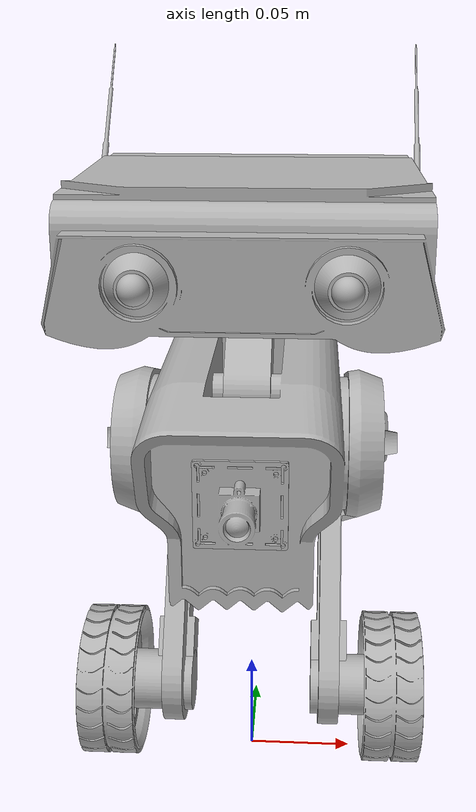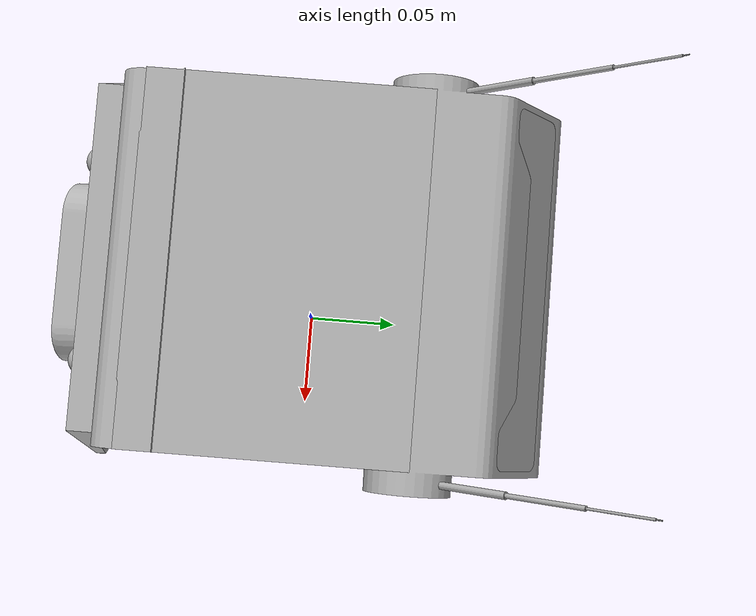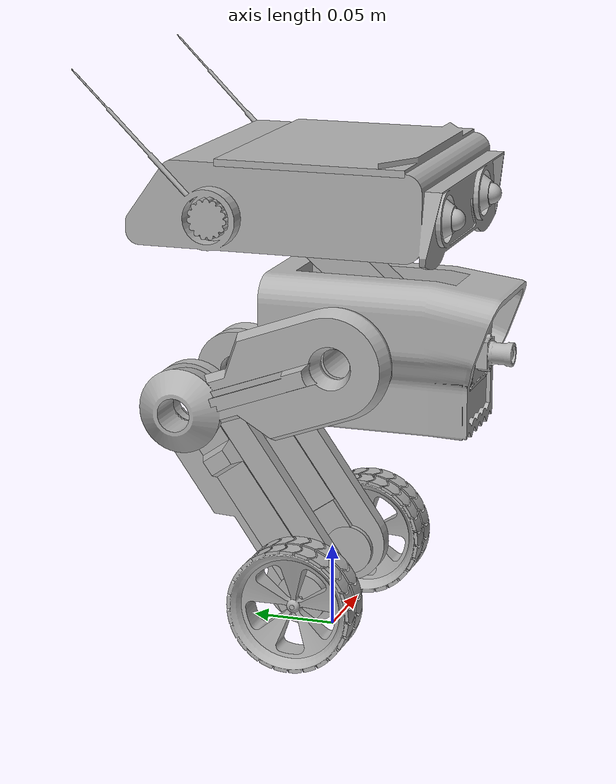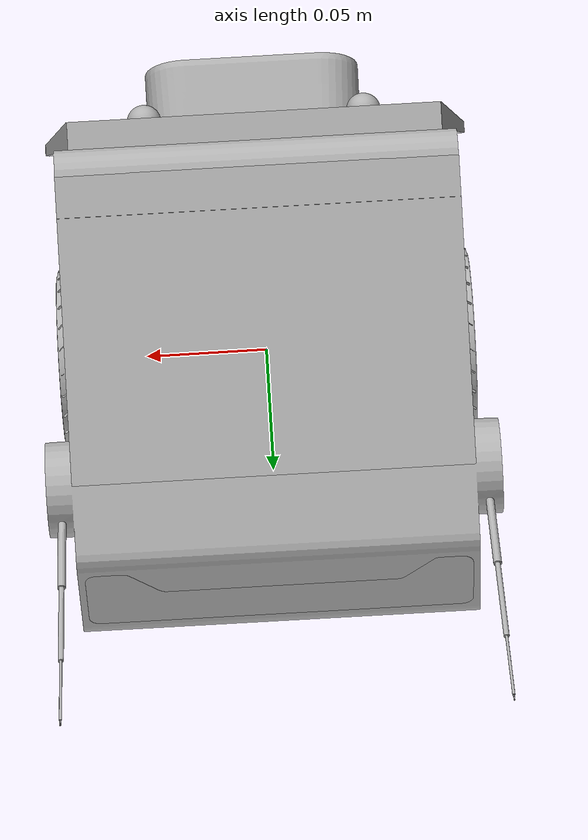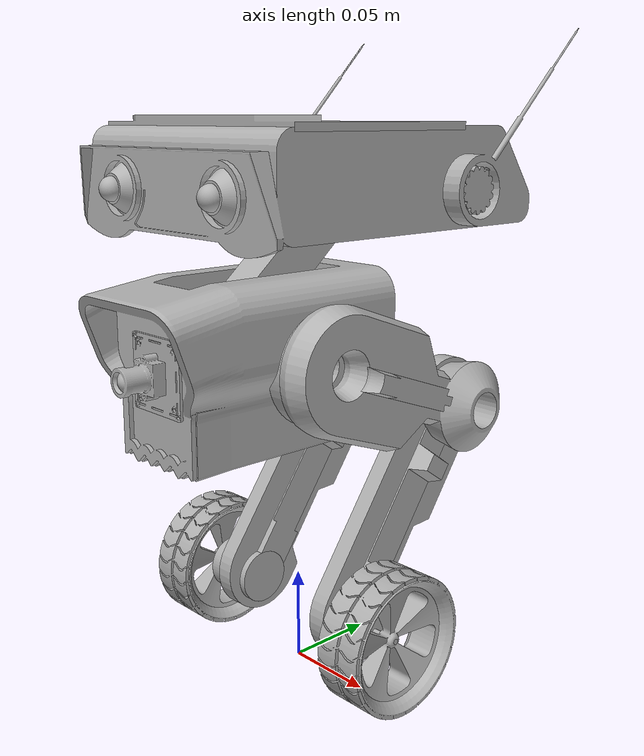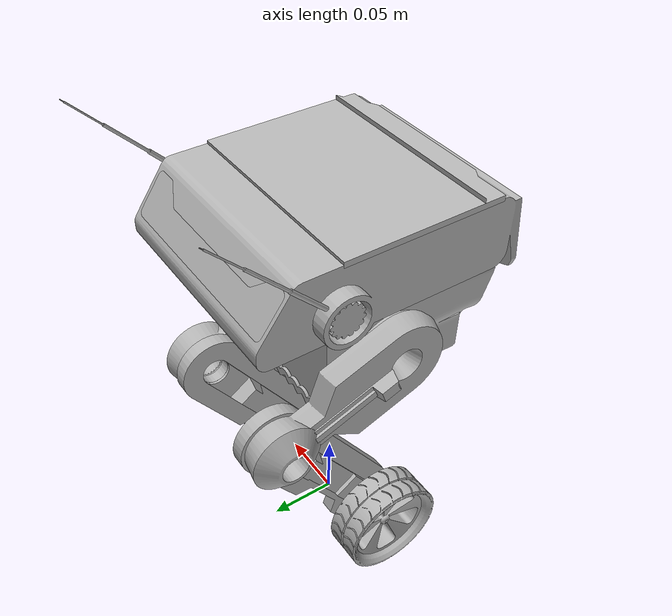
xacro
<?xml version="1.0" ?>
<robot name="bd1_bot" xmlns:xacro="http://www.ros.org/wiki/xacro">

<xacro:include filename="$(find bd1_bot_description)/urdf/materials.xacro" />
<xacro:include filename="$(find bd1_bot_description)/urdf/bd1_bot.trans" />
<xacro:include filename="$(find bd1_bot_description)/urdf/bd1_bot.gazebo" />
<link name="base_link">
  <inertial>
    <origin xyz="-3.180834059638465e-05 -0.028937573687409172 0.17717056516547702" rpy="0 0 0"/>
    <mass value="0.6871683490298791"/>
    <inertia ixx="0.001278" iyy="0.000754" izz="0.001226" ixy="0.0" iyz="9e-06" ixz="-0.0"/>
  </inertial>
  <visual>
    <origin xyz="0 0 0" rpy="0 0 0"/>
    <geometry>
      <mesh filename="file://$(find bd1_bot_description)/meshes/base_link.stl" scale="0.001 0.001 0.001"/>
    </geometry>
    <material name="silver"/>
  </visual>
  <collision>
    <origin xyz="0 0 0" rpy="0 0 0"/>
    <geometry>
      <mesh filename="file://$(find bd1_bot_description)/meshes/base_link.stl" scale="0.001 0.001 0.001"/>
    </geometry>
  </collision>
</link>

<link name="left_top_leg_1">
  <inertial>
    <origin xyz="0.008170600100975256 0.0394894379137513 -0.014373284377612094" rpy="0 0 0"/>
    <mass value="0.11806434962739475"/>
    <inertia ixx="0.000239" iyy="5.5e-05" izz="0.00019" ixy="-6e-06" iyz="5.6e-05" ixz="2e-06"/>
  </inertial>
  <visual>
    <origin xyz="-0.04375 0.017055 -0.176837" rpy="0 0 0"/>
    <geometry>
      <mesh filename="file://$(find bd1_bot_description)/meshes/left_top_leg_1.stl" scale="0.001 0.001 0.001"/>
    </geometry>
    <material name="silver"/>
  </visual>
  <collision>
    <origin xyz="-0.04375 0.017055 -0.176837" rpy="0 0 0"/>
    <geometry>
      <mesh filename="file://$(find bd1_bot_description)/meshes/left_top_leg_1.stl" scale="0.001 0.001 0.001"/>
    </geometry>
  </collision>
</link>

<link name="right_top_leg_1">
  <inertial>
    <origin xyz="-0.008146638140998898 0.03956747308259668 -0.01440168685598367" rpy="0 0 0"/>
    <mass value="0.11765454158339926"/>
    <inertia ixx="0.000238" iyy="5.5e-05" izz="0.000189" ixy="6e-06" iyz="5.6e-05" ixz="-2e-06"/>
  </inertial>
  <visual>
    <origin xyz="0.04375 0.017055 -0.176837" rpy="0 0 0"/>
    <geometry>
      <mesh filename="file://$(find bd1_bot_description)/meshes/right_top_leg_1.stl" scale="0.001 0.001 0.001"/>
    </geometry>
    <material name="silver"/>
  </visual>
  <collision>
    <origin xyz="0.04375 0.017055 -0.176837" rpy="0 0 0"/>
    <geometry>
      <mesh filename="file://$(find bd1_bot_description)/meshes/right_top_leg_1.stl" scale="0.001 0.001 0.001"/>
    </geometry>
  </collision>
</link>

<link name="left_top_leg_part_1">
  <inertial>
    <origin xyz="0.0030166828594480125 0.022791614835476554 -0.008295935118418557" rpy="0 0 0"/>
    <mass value="0.00355238590700276"/>
    <inertia ixx="1e-06" iyy="0.0" izz="1e-06" ixy="0.0" iyz="0.0" ixz="-0.0"/>
  </inertial>
  <visual>
    <origin xyz="-0.05775 0.005408 -0.172598" rpy="0 0 0"/>
    <geometry>
      <mesh filename="file://$(find bd1_bot_description)/meshes/left_top_leg_part_1.stl" scale="0.001 0.001 0.001"/>
    </geometry>
    <material name="silver"/>
  </visual>
  <collision>
    <origin xyz="-0.05775 0.005408 -0.172598" rpy="0 0 0"/>
    <geometry>
      <mesh filename="file://$(find bd1_bot_description)/meshes/left_top_leg_part_1.stl" scale="0.001 0.001 0.001"/>
    </geometry>
  </collision>
</link>

<link name="right_top_leg_part_1">
  <inertial>
    <origin xyz="-0.0030166828594481512 0.022791614835476138 -0.008295935118418613" rpy="0 0 0"/>
    <mass value="0.00355238590700276"/>
    <inertia ixx="1e-06" iyy="0.0" izz="1e-06" ixy="-0.0" iyz="0.0" ixz="0.0"/>
  </inertial>
  <visual>
    <origin xyz="0.05775 0.005408 -0.172598" rpy="0 0 0"/>
    <geometry>
      <mesh filename="file://$(find bd1_bot_description)/meshes/right_top_leg_part_1.stl" scale="0.001 0.001 0.001"/>
    </geometry>
    <material name="silver"/>
  </visual>
  <collision>
    <origin xyz="0.05775 0.005408 -0.172598" rpy="0 0 0"/>
    <geometry>
      <mesh filename="file://$(find bd1_bot_description)/meshes/right_top_leg_part_1.stl" scale="0.001 0.001 0.001"/>
    </geometry>
  </collision>
</link>

<link name="left_bottom_leg_1">
  <inertial>
    <origin xyz="-0.005000000000000122 -0.03342992083960998 -0.04524895101460043" rpy="0 0 0"/>
    <mass value="0.06694057104242657"/>
    <inertia ixx="0.000154" iyy="9.6e-05" izz="5.9e-05" ixy="0.0" iyz="-6e-05" ixz="0.0"/>
  </inertial>
  <visual>
    <origin xyz="-0.04375 -0.074565 -0.14349" rpy="0 0 0"/>
    <geometry>
      <mesh filename="file://$(find bd1_bot_description)/meshes/left_bottom_leg_1.stl" scale="0.001 0.001 0.001"/>
    </geometry>
    <material name="silver"/>
  </visual>
  <collision>
    <origin xyz="-0.04375 -0.074565 -0.14349" rpy="0 0 0"/>
    <geometry>
      <mesh filename="file://$(find bd1_bot_description)/meshes/left_bottom_leg_1.stl" scale="0.001 0.001 0.001"/>
    </geometry>
  </collision>
</link>

<link name="left_bottom_leg_part1_1">
  <inertial>
    <origin xyz="0.0028887297099540535 0.030804854644567246 0.043994677208628444" rpy="0 0 0"/>
    <mass value="0.007986683815434131"/>
    <inertia ixx="8e-06" iyy="6e-06" izz="3e-06" ixy="-0.0" iyz="-4e-06" ixz="-0.0"/>
  </inertial>
  <visual>
    <origin xyz="-0.04275 -0.008604 -0.049287" rpy="0 0 0"/>
    <geometry>
      <mesh filename="file://$(find bd1_bot_description)/meshes/left_bottom_leg_part1_1.stl" scale="0.001 0.001 0.001"/>
    </geometry>
    <material name="silver"/>
  </visual>
  <collision>
    <origin xyz="-0.04275 -0.008604 -0.049287" rpy="0 0 0"/>
    <geometry>
      <mesh filename="file://$(find bd1_bot_description)/meshes/left_bottom_leg_part1_1.stl" scale="0.001 0.001 0.001"/>
    </geometry>
  </collision>
</link>

<link name="left_bottom_leg_part2_1">
  <inertial>
    <origin xyz="-0.0028887297099543657 0.03080485464456717 0.043994677208628416" rpy="0 0 0"/>
    <mass value="0.007986683815434131"/>
    <inertia ixx="8e-06" iyy="6e-06" izz="3e-06" ixy="0.0" iyz="-4e-06" ixz="0.0"/>
  </inertial>
  <visual>
    <origin xyz="-0.03475 -0.008604 -0.049287" rpy="0 0 0"/>
    <geometry>
      <mesh filename="file://$(find bd1_bot_description)/meshes/left_bottom_leg_part2_1.stl" scale="0.001 0.001 0.001"/>
    </geometry>
    <material name="silver"/>
  </visual>
  <collision>
    <origin xyz="-0.03475 -0.008604 -0.049287" rpy="0 0 0"/>
    <geometry>
      <mesh filename="file://$(find bd1_bot_description)/meshes/left_bottom_leg_part2_1.stl" scale="0.001 0.001 0.001"/>
    </geometry>
  </collision>
</link>

<link name="right_bottom_leg_1">
  <inertial>
    <origin xyz="0.004999999999999803 -0.03342992083961032 -0.045248951014600344" rpy="0 0 0"/>
    <mass value="0.06694057104242657"/>
    <inertia ixx="0.000154" iyy="9.6e-05" izz="5.9e-05" ixy="0.0" iyz="-6e-05" ixz="0.0"/>
  </inertial>
  <visual>
    <origin xyz="0.04375 -0.074565 -0.14349" rpy="0 0 0"/>
    <geometry>
      <mesh filename="file://$(find bd1_bot_description)/meshes/right_bottom_leg_1.stl" scale="0.001 0.001 0.001"/>
    </geometry>
    <material name="silver"/>
  </visual>
  <collision>
    <origin xyz="0.04375 -0.074565 -0.14349" rpy="0 0 0"/>
    <geometry>
      <mesh filename="file://$(find bd1_bot_description)/meshes/right_bottom_leg_1.stl" scale="0.001 0.001 0.001"/>
    </geometry>
  </collision>
</link>

<link name="right_bottom_leg_part1_1">
  <inertial>
    <origin xyz="-0.0028887297099544212 0.03080485464456685 0.0439946772086285" rpy="0 0 0"/>
    <mass value="0.007986683815434131"/>
    <inertia ixx="8e-06" iyy="6e-06" izz="3e-06" ixy="0.0" iyz="-4e-06" ixz="0.0"/>
  </inertial>
  <visual>
    <origin xyz="0.04275 -0.008604 -0.049287" rpy="0 0 0"/>
    <geometry>
      <mesh filename="file://$(find bd1_bot_description)/meshes/right_bottom_leg_part1_1.stl" scale="0.001 0.001 0.001"/>
    </geometry>
    <material name="silver"/>
  </visual>
  <collision>
    <origin xyz="0.04275 -0.008604 -0.049287" rpy="0 0 0"/>
    <geometry>
      <mesh filename="file://$(find bd1_bot_description)/meshes/right_bottom_leg_part1_1.stl" scale="0.001 0.001 0.001"/>
    </geometry>
  </collision>
</link>

<link name="right_bottom_leg_part2_1">
  <inertial>
    <origin xyz="0.002888729709954102 0.03080485464456688 0.04399467720862853" rpy="0 0 0"/>
    <mass value="0.007986683815434131"/>
    <inertia ixx="8e-06" iyy="6e-06" izz="3e-06" ixy="-0.0" iyz="-4e-06" ixz="-0.0"/>
  </inertial>
  <visual>
    <origin xyz="0.03475 -0.008604 -0.049287" rpy="0 0 0"/>
    <geometry>
      <mesh filename="file://$(find bd1_bot_description)/meshes/right_bottom_leg_part2_1.stl" scale="0.001 0.001 0.001"/>
    </geometry>
    <material name="silver"/>
  </visual>
  <collision>
    <origin xyz="0.03475 -0.008604 -0.049287" rpy="0 0 0"/>
    <geometry>
      <mesh filename="file://$(find bd1_bot_description)/meshes/right_bottom_leg_part2_1.stl" scale="0.001 0.001 0.001"/>
    </geometry>
  </collision>
</link>

<link name="left_motor_1">
  <inertial>
    <origin xyz="0.015111940298507473 7.507795174563197e-16 -4.996003610813204e-16" rpy="0 0 0"/>
    <mass value="0.022590485913617148"/>
    <inertia ixx="3e-06" iyy="3e-06" izz="3e-06" ixy="-0.0" iyz="0.0" ixz="0.0"/>
  </inertial>
  <visual>
    <origin xyz="-0.02975 -0.0 -0.037" rpy="0 0 0"/>
    <geometry>
      <mesh filename="file://$(find bd1_bot_description)/meshes/left_motor_1.stl" scale="0.001 0.001 0.001"/>
    </geometry>
    <material name="silver"/>
  </visual>
  <collision>
    <origin xyz="-0.02975 -0.0 -0.037" rpy="0 0 0"/>
    <geometry>
      <mesh filename="file://$(find bd1_bot_description)/meshes/left_motor_1.stl" scale="0.001 0.001 0.001"/>
    </geometry>
  </collision>
</link>

<link name="left_wheel_1">
  <inertial>
    <origin xyz="-0.004999999723916709 5.330407374826963e-09 6.948940922679725e-09" rpy="0 0 0"/>
    <mass value="0.02988168724907574"/>
    <inertia ixx="2.1e-05" iyy="1.1e-05" izz="1.1e-05" ixy="0.0" iyz="-0.0" ixz="0.0"/>
  </inertial>
  <visual>
    <origin xyz="-0.07475 -0.0 -0.037" rpy="0 0 0"/>
    <geometry>
      <mesh filename="file://$(find bd1_bot_description)/meshes/left_wheel_1.stl" scale="0.001 0.001 0.001"/>
    </geometry>
    <material name="silver"/>
  </visual>
  <collision>
    <origin xyz="-0.07475 -0.0 -0.037" rpy="0 0 0"/>
    <geometry>
      <mesh filename="file://$(find bd1_bot_description)/meshes/left_wheel_1.stl" scale="0.001 0.001 0.001"/>
    </geometry>
  </collision>
</link>

<link name="left_tyre_1">
  <inertial>
    <origin xyz="-1.858665114175262e-05 3.4965965086175387e-10 5.557722476678961e-10" rpy="0 0 0"/>
    <mass value="0.027473313011808588"/>
    <inertia ixx="3.3e-05" iyy="1.8e-05" izz="1.8e-05" ixy="0.0" iyz="-0.0" ixz="0.0"/>
  </inertial>
  <visual>
    <origin xyz="-0.06975 -0.0 -0.037" rpy="0 0 0"/>
    <geometry>
      <mesh filename="file://$(find bd1_bot_description)/meshes/left_tyre_1.stl" scale="0.001 0.001 0.001"/>
    </geometry>
    <material name="silver"/>
  </visual>
  <collision>
    <origin xyz="-0.06975 -0.0 -0.037" rpy="0 0 0"/>
    <geometry>
      <mesh filename="file://$(find bd1_bot_description)/meshes/left_tyre_1.stl" scale="0.001 0.001 0.001"/>
    </geometry>
  </collision>
</link>

<link name="right_motor_1">
  <inertial>
    <origin xyz="-0.015111940298507438 -9.605255930854404e-16 5.065392549852277e-16" rpy="0 0 0"/>
    <mass value="0.022590485913617148"/>
    <inertia ixx="3e-06" iyy="3e-06" izz="3e-06" ixy="-0.0" iyz="0.0" ixz="0.0"/>
  </inertial>
  <visual>
    <origin xyz="0.02975 0.0 -0.037" rpy="0 0 0"/>
    <geometry>
      <mesh filename="file://$(find bd1_bot_description)/meshes/right_motor_1.stl" scale="0.001 0.001 0.001"/>
    </geometry>
    <material name="silver"/>
  </visual>
  <collision>
    <origin xyz="0.02975 0.0 -0.037" rpy="0 0 0"/>
    <geometry>
      <mesh filename="file://$(find bd1_bot_description)/meshes/right_motor_1.stl" scale="0.001 0.001 0.001"/>
    </geometry>
  </collision>
</link>

<link name="right_wheel_1">
  <inertial>
    <origin xyz="0.00500000042509488 5.330406753102071e-09 6.94894101982424e-09" rpy="0 0 0"/>
    <mass value="0.02988168724907574"/>
    <inertia ixx="2.1e-05" iyy="1.1e-05" izz="1.1e-05" ixy="0.0" iyz="-0.0" ixz="0.0"/>
  </inertial>
  <visual>
    <origin xyz="0.07475 0.0 -0.037" rpy="0 0 0"/>
    <geometry>
      <mesh filename="file://$(find bd1_bot_description)/meshes/right_wheel_1.stl" scale="0.001 0.001 0.001"/>
    </geometry>
    <material name="silver"/>
  </visual>
  <collision>
    <origin xyz="0.07475 0.0 -0.037" rpy="0 0 0"/>
    <geometry>
      <mesh filename="file://$(find bd1_bot_description)/meshes/right_wheel_1.stl" scale="0.001 0.001 0.001"/>
    </geometry>
  </collision>
</link>

<link name="right_tyre_1">
  <inertial>
    <origin xyz="-1.8586502130130134e-05 3.4965902913685986e-10 5.557724072624559e-10" rpy="0 0 0"/>
    <mass value="0.027473313011808588"/>
    <inertia ixx="3.3e-05" iyy="1.8e-05" izz="1.8e-05" ixy="0.0" iyz="-0.0" ixz="0.0"/>
  </inertial>
  <visual>
    <origin xyz="0.06975 0.0 -0.037" rpy="0 0 0"/>
    <geometry>
      <mesh filename="file://$(find bd1_bot_description)/meshes/right_tyre_1.stl" scale="0.001 0.001 0.001"/>
    </geometry>
    <material name="silver"/>
  </visual>
  <collision>
    <origin xyz="0.06975 0.0 -0.037" rpy="0 0 0"/>
    <geometry>
      <mesh filename="file://$(find bd1_bot_description)/meshes/right_tyre_1.stl" scale="0.001 0.001 0.001"/>
    </geometry>
  </collision>
</link>

<link name="head_connector_1">
  <inertial>
    <origin xyz="-6.6613381477509405e-18 0.030188877571634746 0.026242577707178166" rpy="0 0 0"/>
    <mass value="0.045313827186204206"/>
    <inertia ixx="3.5e-05" iyy="1.7e-05" izz="2.1e-05" ixy="0.0" iyz="-1.5e-05" ixz="0.0"/>
  </inertial>
  <visual>
    <origin xyz="-0.0 0.031767 -0.206501" rpy="0 0 0"/>
    <geometry>
      <mesh filename="file://$(find bd1_bot_description)/meshes/head_connector_1.stl" scale="0.001 0.001 0.001"/>
    </geometry>
    <material name="silver"/>
  </visual>
  <collision>
    <origin xyz="-0.0 0.031767 -0.206501" rpy="0 0 0"/>
    <geometry>
      <mesh filename="file://$(find bd1_bot_description)/meshes/head_connector_1.stl" scale="0.001 0.001 0.001"/>
    </geometry>
  </collision>
</link>

<link name="head_1">
  <inertial>
    <origin xyz="-1.7784182525826254e-06 -0.021451548337959786 0.00893485011990891" rpy="0 0 0"/>
    <mass value="1.199572908129388"/>
    <inertia ixx="0.00315" iyy="0.002464" izz="0.005149" ixy="0.0" iyz="4.1e-05" ixz="0.0"/>
  </inertial>
  <visual>
    <origin xyz="0.0 -0.02861 -0.258986" rpy="0 0 0"/>
    <geometry>
      <mesh filename="file://$(find bd1_bot_description)/meshes/head_1.stl" scale="0.001 0.001 0.001"/>
    </geometry>
    <material name="silver"/>
  </visual>
  <collision>
    <origin xyz="0.0 -0.02861 -0.258986" rpy="0 0 0"/>
    <geometry>
      <mesh filename="file://$(find bd1_bot_description)/meshes/head_1.stl" scale="0.001 0.001 0.001"/>
    </geometry>
  </collision>
</link>

<link name="left_ear_1">
  <inertial>
    <origin xyz="0.00399999999999992 2.6078045980287845e-07 -6.113328676615737e-08" rpy="0 0 0"/>
    <mass value="0.0032936425348182733"/>
    <inertia ixx="0.0" iyy="0.0" izz="0.0" ixy="0.0" iyz="-0.0" ixz="0.0"/>
  </inertial>
  <visual>
    <origin xyz="-0.0725 -0.04811 -0.262986" rpy="0 0 0"/>
    <geometry>
      <mesh filename="file://$(find bd1_bot_description)/meshes/left_ear_1.stl" scale="0.001 0.001 0.001"/>
    </geometry>
    <material name="silver"/>
  </visual>
  <collision>
    <origin xyz="-0.0725 -0.04811 -0.262986" rpy="0 0 0"/>
    <geometry>
      <mesh filename="file://$(find bd1_bot_description)/meshes/left_ear_1.stl" scale="0.001 0.001 0.001"/>
    </geometry>
  </collision>
</link>

<link name="left_antenna_1">
  <inertial>
    <origin xyz="0.0005496913872387876 0.022283735539851225 0.02228341362611147" rpy="0 0 0"/>
    <mass value="0.0004022122169528586"/>
    <inertia ixx="0.0" iyy="0.0" izz="0.0" ixy="-0.0" iyz="-0.0" ixz="-0.0"/>
  </inertial>
  <visual>
    <origin xyz="-0.077459 -0.057818 -0.272694" rpy="0 0 0"/>
    <geometry>
      <mesh filename="file://$(find bd1_bot_description)/meshes/left_antenna_1.stl" scale="0.001 0.001 0.001"/>
    </geometry>
    <material name="silver"/>
  </visual>
  <collision>
    <origin xyz="-0.077459 -0.057818 -0.272694" rpy="0 0 0"/>
    <geometry>
      <mesh filename="file://$(find bd1_bot_description)/meshes/left_antenna_1.stl" scale="0.001 0.001 0.001"/>
    </geometry>
  </collision>
</link>

<link name="right_ear_1">
  <inertial>
    <origin xyz="-0.0040000000000001285 2.607804592061336e-07 -6.113328671064622e-08" rpy="0 0 0"/>
    <mass value="0.0032936425348182733"/>
    <inertia ixx="0.0" iyy="0.0" izz="0.0" ixy="0.0" iyz="0.0" ixz="0.0"/>
  </inertial>
  <visual>
    <origin xyz="0.0725 -0.04811 -0.262986" rpy="0 0 0"/>
    <geometry>
      <mesh filename="file://$(find bd1_bot_description)/meshes/right_ear_1.stl" scale="0.001 0.001 0.001"/>
    </geometry>
    <material name="silver"/>
  </visual>
  <collision>
    <origin xyz="0.0725 -0.04811 -0.262986" rpy="0 0 0"/>
    <geometry>
      <mesh filename="file://$(find bd1_bot_description)/meshes/right_ear_1.stl" scale="0.001 0.001 0.001"/>
    </geometry>
  </collision>
</link>

<link name="right_antenna_1">
  <inertial>
    <origin xyz="-0.0005503513654630948 0.02228315344381148 0.02228383153044894" rpy="0 0 0"/>
    <mass value="0.0004022122169528586"/>
    <inertia ixx="0.0" iyy="0.0" izz="0.0" ixy="0.0" iyz="-0.0" ixz="0.0"/>
  </inertial>
  <visual>
    <origin xyz="0.077492 -0.057819 -0.272694" rpy="0 0 0"/>
    <geometry>
      <mesh filename="file://$(find bd1_bot_description)/meshes/right_antenna_1.stl" scale="0.001 0.001 0.001"/>
    </geometry>
    <material name="silver"/>
  </visual>
  <collision>
    <origin xyz="0.077492 -0.057819 -0.272694" rpy="0 0 0"/>
    <geometry>
      <mesh filename="file://$(find bd1_bot_description)/meshes/right_antenna_1.stl" scale="0.001 0.001 0.001"/>
    </geometry>
  </collision>
</link>

<link name="head_display_1">
  <inertial>
    <origin xyz="0.0003514379854288396 0.003044281411444985 -0.002541755070057994" rpy="0 0 0"/>
    <mass value="0.006639116097329573"/>
    <inertia ixx="0.0" iyy="1.3e-05" izz="1.3e-05" ixy="0.0" iyz="0.0" ixz="-0.0"/>
  </inertial>
  <visual>
    <origin xyz="0.0 -0.086934 -0.274692" rpy="0 0 0"/>
    <geometry>
      <mesh filename="file://$(find bd1_bot_description)/meshes/head_display_1.stl" scale="0.001 0.001 0.001"/>
    </geometry>
    <material name="silver"/>
  </visual>
  <collision>
    <origin xyz="0.0 -0.086934 -0.274692" rpy="0 0 0"/>
    <geometry>
      <mesh filename="file://$(find bd1_bot_description)/meshes/head_display_1.stl" scale="0.001 0.001 0.001"/>
    </geometry>
  </collision>
</link>

<link name="head_protector_1">
  <inertial>
    <origin xyz="6.217248937900877e-17 -0.003643855103085512 0.0022690081605357126" rpy="0 0 0"/>
    <mass value="0.07384812099098235"/>
    <inertia ixx="8.2e-05" iyy="0.000127" izz="0.000208" ixy="-0.0" iyz="1e-06" ixz="-0.0"/>
  </inertial>
  <visual>
    <origin xyz="-0.0 0.008948 -0.291986" rpy="0 0 0"/>
    <geometry>
      <mesh filename="file://$(find bd1_bot_description)/meshes/head_protector_1.stl" scale="0.001 0.001 0.001"/>
    </geometry>
    <material name="silver"/>
  </visual>
  <collision>
    <origin xyz="-0.0 0.008948 -0.291986" rpy="0 0 0"/>
    <geometry>
      <mesh filename="file://$(find bd1_bot_description)/meshes/head_protector_1.stl" scale="0.001 0.001 0.001"/>
    </geometry>
  </collision>
</link>

<link name="left_eye_1">
  <inertial>
    <origin xyz="3.191891195797325e-16 -0.0027580036823476456 -6.11333086930621e-08" rpy="0 0 0"/>
    <mass value="0.0015739870068336985"/>
    <inertia ixx="0.0" iyy="0.0" izz="0.0" ixy="-0.0" iyz="0.0" ixz="-0.0"/>
  </inertial>
  <visual>
    <origin xyz="-0.04 0.07639 -0.263986" rpy="0 0 0"/>
    <geometry>
      <mesh filename="file://$(find bd1_bot_description)/meshes/left_eye_1.stl" scale="0.001 0.001 0.001"/>
    </geometry>
    <material name="silver"/>
  </visual>
  <collision>
    <origin xyz="-0.04 0.07639 -0.263986" rpy="0 0 0"/>
    <geometry>
      <mesh filename="file://$(find bd1_bot_description)/meshes/left_eye_1.stl" scale="0.001 0.001 0.001"/>
    </geometry>
  </collision>
</link>

<link name="left_eye_ball_1">
  <inertial>
    <origin xyz="3.2612801348363973e-16 -0.0023434892195376283 -6.113330880408441e-08" rpy="0 0 0"/>
    <mass value="0.0005420065450529266"/>
    <inertia ixx="0.0" iyy="0.0" izz="0.0" ixy="0.0" iyz="0.0" ixz="-0.0"/>
  </inertial>
  <visual>
    <origin xyz="-0.04 0.08389 -0.263986" rpy="0 0 0"/>
    <geometry>
      <mesh filename="file://$(find bd1_bot_description)/meshes/left_eye_ball_1.stl" scale="0.001 0.001 0.001"/>
    </geometry>
    <material name="silver"/>
  </visual>
  <collision>
    <origin xyz="-0.04 0.08389 -0.263986" rpy="0 0 0"/>
    <geometry>
      <mesh filename="file://$(find bd1_bot_description)/meshes/left_eye_ball_1.stl" scale="0.001 0.001 0.001"/>
    </geometry>
  </collision>
</link>

<link name="right_eye_1">
  <inertial>
    <origin xyz="4.0939474033052647e-16 -0.0027580036823480064 -6.11333086930621e-08" rpy="0 0 0"/>
    <mass value="0.0015739870068336985"/>
    <inertia ixx="0.0" iyy="0.0" izz="0.0" ixy="-0.0" iyz="0.0" ixz="-0.0"/>
  </inertial>
  <visual>
    <origin xyz="0.04 0.07639 -0.263986" rpy="0 0 0"/>
    <geometry>
      <mesh filename="file://$(find bd1_bot_description)/meshes/right_eye_1.stl" scale="0.001 0.001 0.001"/>
    </geometry>
    <material name="silver"/>
  </visual>
  <collision>
    <origin xyz="0.04 0.07639 -0.263986" rpy="0 0 0"/>
    <geometry>
      <mesh filename="file://$(find bd1_bot_description)/meshes/right_eye_1.stl" scale="0.001 0.001 0.001"/>
    </geometry>
  </collision>
</link>

<link name="right_eye_ball_1">
  <inertial>
    <origin xyz="3.400058012914542e-16 -0.0023434892195378504 -6.113330880408441e-08" rpy="0 0 0"/>
    <mass value="0.0005420065450529266"/>
    <inertia ixx="0.0" iyy="0.0" izz="0.0" ixy="0.0" iyz="0.0" ixz="0.0"/>
  </inertial>
  <visual>
    <origin xyz="0.04 0.08389 -0.263986" rpy="0 0 0"/>
    <geometry>
      <mesh filename="file://$(find bd1_bot_description)/meshes/right_eye_ball_1.stl" scale="0.001 0.001 0.001"/>
    </geometry>
    <material name="silver"/>
  </visual>
  <collision>
    <origin xyz="0.04 0.08389 -0.263986" rpy="0 0 0"/>
    <geometry>
      <mesh filename="file://$(find bd1_bot_description)/meshes/right_eye_ball_1.stl" scale="0.001 0.001 0.001"/>
    </geometry>
  </collision>
</link>

<link name="ov_camera_1">
  <inertial>
    <origin xyz="-0.00010062533325747048 -0.0056682682583362315 0.0002650247252930782" rpy="0 0 0"/>
    <mass value="0.0056389881980399275"/>
    <inertia ixx="1e-06" iyy="1e-06" izz="1e-06" ixy="0.0" iyz="-0.0" ixz="0.0"/>
  </inertial>
  <visual>
    <origin xyz="-0.0 0.087401 -0.178387" rpy="0 0 0"/>
    <geometry>
      <mesh filename="file://$(find bd1_bot_description)/meshes/ov_camera_1.stl" scale="0.001 0.001 0.001"/>
    </geometry>
    <material name="silver"/>
  </visual>
  <collision>
    <origin xyz="-0.0 0.087401 -0.178387" rpy="0 0 0"/>
    <geometry>
      <mesh filename="file://$(find bd1_bot_description)/meshes/ov_camera_1.stl" scale="0.001 0.001 0.001"/>
    </geometry>
  </collision>
</link>

<link name="fake_camera_1">
  <origin xyz="-0.00010062533325747048 -0.0056682682583362315 0.0002650247252930782" rpy="0 0 0"/>
</link>

<joint name="left_top_leg_fix" type="fixed">
  <origin xyz="0.04375 -0.017055 0.176837" rpy="0 0 0"/>
  <parent link="base_link"/>
  <child link="left_top_leg_1"/>
</joint>

<joint name="right_top_leg_fix" type="fixed">
  <origin xyz="-0.04375 -0.017055 0.176837" rpy="0 0 0"/>
  <parent link="base_link"/>
  <child link="right_top_leg_1"/>
</joint>

<joint name="left_top_leg_part_fix" type="fixed">
  <origin xyz="0.014 0.011647 -0.004239" rpy="0 0 0"/>
  <parent link="left_top_leg_1"/>
  <child link="left_top_leg_part_1"/>
</joint>

<joint name="right_top_leg_part_fix" type="fixed">
  <origin xyz="-0.014 0.011647 -0.004239" rpy="0 0 0"/>
  <parent link="right_top_leg_1"/>
  <child link="right_top_leg_part_1"/>
</joint>

<joint name="left_bottom_leg_fix" type="fixed">
  <origin xyz="0.0 0.09162 -0.033347" rpy="0 0 0"/>
  <parent link="left_top_leg_1"/>
  <child link="left_bottom_leg_1"/>
</joint>

<joint name="left_bottom_leg_part1_fix" type="fixed">
  <origin xyz="-0.001 -0.065961 -0.094203" rpy="0 0 0"/>
  <parent link="left_bottom_leg_1"/>
  <child link="left_bottom_leg_part1_1"/>
</joint>

<joint name="left_bottom_leg_part2_fix" type="fixed">
  <origin xyz="-0.009 -0.065961 -0.094203" rpy="0 0 0"/>
  <parent link="left_bottom_leg_1"/>
  <child link="left_bottom_leg_part2_1"/>
</joint>

<joint name="right_bottom_leg_fix" type="fixed">
  <origin xyz="0.0 0.09162 -0.033347" rpy="0 0 0"/>
  <parent link="right_top_leg_1"/>
  <child link="right_bottom_leg_1"/>
</joint>

<joint name="right_bottom_leg_part1_fix" type="fixed">
  <origin xyz="0.001 -0.065961 -0.094203" rpy="0 0 0"/>
  <parent link="right_bottom_leg_1"/>
  <child link="right_bottom_leg_part1_1"/>
</joint>

<joint name="right_bottom_leg_part2_fix" type="fixed">
  <origin xyz="0.009 -0.065961 -0.094203" rpy="0 0 0"/>
  <parent link="right_bottom_leg_1"/>
  <child link="right_bottom_leg_part2_1"/>
</joint>

<joint name="left_motor_fix" type="fixed">
  <origin xyz="-0.005 -0.008604 -0.012287" rpy="0 0 0"/>
  <parent link="left_bottom_leg_part2_1"/>
  <child link="left_motor_1"/>
</joint>

<joint name="left_wheel_joint" type="continuous">
  <origin xyz="0.045 0.0 0.0" rpy="0 0 0"/>
  <parent link="left_motor_1"/>
  <child link="left_wheel_1"/>
  <axis xyz="1.0 0.0 0.0"/>
</joint>

<joint name="left_tyre_fix" type="fixed">
  <origin xyz="-0.005 0.0 0.0" rpy="0 0 0"/>
  <parent link="left_wheel_1"/>
  <child link="left_tyre_1"/>
</joint>

<joint name="right_motor_fix" type="fixed">
  <origin xyz="0.005 -0.008604 -0.012287" rpy="0 0 0"/>
  <parent link="right_bottom_leg_part2_1"/>
  <child link="right_motor_1"/>
</joint>

<joint name="right_wheel_joint" type="continuous">
  <origin xyz="-0.045 0.0 0.0" rpy="0 0 0"/>
  <parent link="right_motor_1"/>
  <child link="right_wheel_1"/>
  <axis xyz="1.0 0.0 0.0"/>
</joint>

<joint name="right_tyre_fix" type="fixed">
  <origin xyz="0.005 0.0 0.0" rpy="0 0 0"/>
  <parent link="right_wheel_1"/>
  <child link="right_tyre_1"/>
</joint>

<joint name="head_holder_bottom_fix" type="fixed">
  <origin xyz="0.0 -0.031767 0.206501" rpy="0 0 0"/>
  <parent link="base_link"/>
  <child link="head_connector_1"/>
</joint>

<joint name="head_holder_top_fix" type="fixed">
  <origin xyz="-0.0 0.060377 0.052485" rpy="0 0 0"/>
  <parent link="head_connector_1"/>
  <child link="head_1"/>
</joint>

<joint name="left_ear_fix" type="fixed">
  <origin xyz="0.0725 0.0195 0.004" rpy="0 0 0"/>
  <parent link="head_1"/>
  <child link="left_ear_1"/>
</joint>

<joint name="left_antenna_fix" type="fixed">
  <origin xyz="0.077459 0.029208 0.013708" rpy="0 0 0"/>
  <parent link="head_1"/>
  <child link="left_antenna_1"/>
</joint>

<joint name="right_ear_fix" type="fixed">
  <origin xyz="-0.0725 0.0195 0.004" rpy="0 0 0"/>
  <parent link="head_1"/>
  <child link="right_ear_1"/>
</joint>

<joint name="right_antenna_fix" type="fixed">
  <origin xyz="-0.077492 0.029209 0.013708" rpy="0 0 0"/>
  <parent link="head_1"/>
  <child link="right_antenna_1"/>
</joint>

<joint name="head_display_fix" type="fixed">
  <origin xyz="0.0 0.058324 0.015706" rpy="0 0 0"/>
  <parent link="head_1"/>
  <child link="head_display_1"/>
</joint>

<joint name="head_protector_fix" type="fixed">
  <origin xyz="0.0 -0.037558 0.033" rpy="0 0 0"/>
  <parent link="head_1"/>
  <child link="head_protector_1"/>
</joint>

<joint name="left_eye_fix" type="fixed">
  <origin xyz="0.04 -0.105 0.005" rpy="0 0 0"/>
  <parent link="head_1"/>
  <child link="left_eye_1"/>
</joint>

<joint name="left_eye_ball_fix" type="fixed">
  <origin xyz="0.0 -0.0075 0.0" rpy="0 0 0"/>
  <parent link="left_eye_1"/>
  <child link="left_eye_ball_1"/>
</joint>

<joint name="right_eye_fix" type="fixed">
  <origin xyz="-0.04 -0.105 0.005" rpy="0 0 0"/>
  <parent link="head_1"/>
  <child link="right_eye_1"/>
</joint>

<joint name="right_eye_ball_fix" type="fixed">
  <origin xyz="0.0 -0.0075 0.0" rpy="0 0 0"/>
  <parent link="right_eye_1"/>
  <child link="right_eye_ball_1"/>
</joint>

<joint name="camera_fix" type="fixed">
  <origin xyz="0.0 -0.087401 0.178387" rpy="0 0 0"/>
  <parent link="base_link"/>
  <child link="ov_camera_1"/>
</joint>

<joint name="fake_camera_fix" type="fixed">
  <origin xyz="0.0 -0.090 0.178387" rpy="0 0 -1.57"/>
  <parent link="base_link"/>
  <child link="fake_camera_1"/>
</joint>

</robot>

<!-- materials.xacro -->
<robot name="bd1_bot" xmlns:xacro="http://www.ros.org/wiki/xacro" >

<material name="silver">
  <color rgba="0.700 0.700 0.700 1.000"/>
</material>

</robot>

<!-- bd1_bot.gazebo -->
<robot name="bd1_bot" xmlns:xacro="http://www.ros.org/wiki/xacro" >

<xacro:property name="body_color" value="Gazebo/Blue" />
<xacro:property name="part_color" value="Gazebo/Red" />
<xacro:property name="ear_color" value="Gazebo/Green" />
<xacro:property name="antenna_color" value="Gazebo/Orange" />
<xacro:property name="tyre_color" value="Gazebo/Black" />
<xacro:property name="rim_color" value="Gazebo/Yellow" />

<gazebo>
  <plugin name="control" filename="libgazebo_ros_control.so"/>
</gazebo>

<gazebo>
  <plugin name="differential_drive_controller" filename="libgazebo_ros_diff_drive.so">
    <!-- Plugin update rate in Hz -->
    <update_rate>100000</update_rate>

    <!-- Name of left joint, defaults to `left_joint` -->
    <left_joint>left_wheel_joint</left_joint>

    <!-- Name of right joint, defaults to `right_joint` -->
    <right_joint>right_wheel_joint</right_joint>

    <!-- Wheel acceleration, in rad/s^2, defaults to 0.0 rad/s^2 -->
    <max_wheel_acceleration>1.0</max_wheel_acceleration>

    <!-- Maximum torque which the wheels can produce, in Nm, defaults to 5 Nm -->
    <max_wheel_torque>5</max_wheel_torque>

    <!-- Odometry frame, defaults to `odom` -->
    <odometry_frame>odom</odometry_frame>

    <!-- Robot frame to calculate odometry from, defaults to `base_footprint` -->
    <robot_base_frame>left_top_leg_part_1</robot_base_frame>

    <!-- Odometry source, 0 for ENCODER, 1 for WORLD, defaults to WORLD -->
    <odometry_source>1</odometry_source>

    <!-- Set to true to publish transforms for the wheel links, defaults to false -->
    <publish_wheel_tf>false</publish_wheel_tf>

    <!-- Robot Wheel Seperation Distance in m -->

    <!-- Robot Wheel Diameter in m -->

    <!-- Set to true to publish transforms for the odometry, defaults to true -->
    <publish_odom>true</publish_odom>

    <!-- Set to true to swap right and left wheels, defaults to true -->
  </plugin>
</gazebo>

<gazebo reference="head_1">
    <sensor name="rplidar_a3" type="ray">
        <always_on>true</always_on>
        <visualize>false</visualize>
        <pose>0 0 0 0 0 0</pose>
        <update_rate>100000</update_rate>
        <ray>
          <scan>
            <horizontal>
              <samples>667</samples>
              <resolution>0.54</resolution>
              <min_angle>0.000000</min_angle>
              <max_angle>6.280000</max_angle>
            </horizontal>
          </scan>
          <range>
            <min>0.120000</min>
            <max>20</max>
            <resolution>0.54</resolution>
          </range>
          <noise>
            <type>gaussian</type>
            <mean>0.0</mean>
            <stddev>0.01</stddev>
          </noise>
        </ray>
        <plugin name="bytes_laserscan" filename="libgazebo_ros_ray_sensor.so">
          <ros>
              <namespace>lidar</namespace>
            <remapping>~/out:=scan</remapping>
          </ros>
          <output_type>sensor_msgs/LaserScan</output_type>
          <frame_name>head</frame_name>
        </plugin>
    </sensor>
</gazebo>

<gazebo reference="fake_camera_1">
  <sensor type="camera" name="ov_camera">
    <update_rate>60</update_rate>
    <visualize>false</visualize>
    <camera name="head">
      <horizontal_fov>1.3962634</horizontal_fov>
      <image>
        <width>640</width>
        <height>480</height>
        <format>R8G8B8</format>
      </image>
      <clip>
        <near>0.02</near>
        <far>100</far>
      </clip>
      <noise>
        <type>gaussian</type>
        <mean>0.0</mean>
        <stddev>0.007</stddev>
      </noise>
    </camera>
    <plugin name="camera_controller" filename="libgazebo_ros_camera.so">
      <ros>
        <remapping>image_raw:=image</remapping>
      </ros>
    </plugin>
  </sensor>
</gazebo>

<gazebo reference="base_link">
  <material>${antenna_color}</material>
  <mu1>0.2</mu1>
  <mu2>0.2</mu2>
  <self_collide>true</self_collide>
  <gravity>true</gravity>
</gazebo>

<gazebo reference="left_top_leg_1">
  <material>${body_color}</material>
  <mu1>0.2</mu1>
  <mu2>0.2</mu2>
  <self_collide>true</self_collide>
</gazebo>

<gazebo reference="right_top_leg_1">
  <material>${body_color}</material>
  <mu1>0.2</mu1>
  <mu2>0.2</mu2>
  <self_collide>true</self_collide>
</gazebo>

<gazebo reference="left_top_leg_part_1">
  <material>${part_color}</material>
  <mu1>0.2</mu1>
  <mu2>0.2</mu2>
  <self_collide>true</self_collide>
</gazebo>

<gazebo reference="right_top_leg_part_1">
  <material>${part_color}</material>
  <mu1>0.2</mu1>
  <mu2>0.2</mu2>
  <self_collide>true</self_collide>
</gazebo>

<gazebo reference="left_bottom_leg_1">
  <material>${body_color}</material>
  <mu1>0.2</mu1>
  <mu2>0.2</mu2>
  <self_collide>true</self_collide>
</gazebo>

<gazebo reference="right_bottom_leg_1">
  <material>${body_color}</material>
  <mu1>0.2</mu1>
  <mu2>0.2</mu2>
  <self_collide>true</self_collide>
</gazebo>

<gazebo reference="right_bottom_leg_part1_1">
  <material>${part_color}</material>
  <mu1>0.2</mu1>
  <mu2>0.2</mu2>
  <self_collide>true</self_collide>
</gazebo>

<gazebo reference="right_bottom_leg_part2_1">
  <material>${part_color}</material>
  <mu1>0.2</mu1>
  <mu2>0.2</mu2>
  <self_collide>true</self_collide>
</gazebo>

<gazebo reference="left_bottom_leg_part1_1">
  <material>${part_color}</material>
  <mu1>0.2</mu1>
  <mu2>0.2</mu2>
  <self_collide>true</self_collide>
</gazebo>

<gazebo reference="left_bottom_leg_part2_1">
  <material>${part_color}</material>
  <mu1>0.2</mu1>
  <mu2>0.2</mu2>
  <self_collide>true</self_collide>
</gazebo>

<gazebo reference="left_motor_1">
  <material>${antenna_color}</material>
  <mu1>0.2</mu1>
  <mu2>0.2</mu2>
  <self_collide>true</self_collide>
</gazebo>

<gazebo reference="right_motor_1">
  <material>${antenna_color}</material>
  <mu1>0.2</mu1>
  <mu2>0.2</mu2>
  <self_collide>true</self_collide>
</gazebo>

<gazebo reference="left_wheel_1">
  <material>${rim_color}</material>
  <mu1>0.2</mu1>
  <mu2>0.2</mu2>
  <self_collide>true</self_collide>
</gazebo>

<gazebo reference="right_wheel_1">
  <material>${rim_color}</material>
  <mu1>0.2</mu1>
  <mu2>0.2</mu2>
  <self_collide>true</self_collide>
</gazebo>

<gazebo reference="left_tyre_1">
  <material>${tyre_color}</material>
  <mu1>1.0</mu1>
  <mu2>1.0</mu2>
  <self_collide>true</self_collide>
</gazebo>

<gazebo reference="right_tyre_1">
  <material>${tyre_color}</material>
  <mu1>1.0</mu1>
  <mu2>1.0</mu2>
  <self_collide>true</self_collide>
</gazebo>

<gazebo reference="head_connector_1">
  <material>${rim_color}</material>
  <mu1>0.2</mu1>
  <mu2>0.2</mu2>
  <self_collide>true</self_collide>
</gazebo>

<gazebo reference="head_1">
  <material>${part_color}</material>
  <mu1>0.2</mu1>
  <mu2>0.2</mu2>
  <self_collide>true</self_collide>
</gazebo>

<gazebo reference="left_antenna_1">
  <material>${antenna_color}</material>
  <mu1>0.2</mu1>
  <mu2>0.2</mu2>
  <self_collide>true</self_collide>
</gazebo>

<gazebo reference="right_antenna_1">
  <material>${antenna_color}</material>
  <mu1>0.2</mu1>
  <mu2>0.2</mu2>
  <self_collide>true</self_collide>
</gazebo>

<gazebo reference="head_protector_1">
  <material>${ear_color}</material>
  <mu1>0.2</mu1>
  <mu2>0.2</mu2>
  <self_collide>true</self_collide>
</gazebo>

<gazebo reference="head_display_1">
  <material>${ear_color}</material>
  <mu1>0.2</mu1>
  <mu2>0.2</mu2>
  <self_collide>true</self_collide>
</gazebo>

<gazebo reference="left_ear_1">
  <material>${rim_color}</material>
  <mu1>0.2</mu1>
  <mu2>0.2</mu2>
  <self_collide>true</self_collide>
</gazebo>

<gazebo reference="right_ear_1">
  <material>${rim_color}</material>
  <mu1>0.2</mu1>
  <mu2>0.2</mu2>
  <self_collide>true</self_collide>
</gazebo>

<gazebo reference="right_eye_1">
  <material>${body_color}</material>
  <mu1>0.2</mu1>
  <mu2>0.2</mu2>
  <self_collide>true</self_collide>
</gazebo>

<gazebo reference="right_eye_ball_1">
  <material>${tyre_color}</material>
  <mu1>0.2</mu1>
  <mu2>0.2</mu2>
  <self_collide>true</self_collide>
</gazebo>

<gazebo reference="left_eye_1">
  <material>${body_color}</material>
  <mu1>0.2</mu1>
  <mu2>0.2</mu2>
  <self_collide>true</self_collide>
</gazebo>

<gazebo reference="left_eye_ball_1">
  <material>${tyre_color}</material>
  <mu1>0.2</mu1>
  <mu2>0.2</mu2>
  <self_collide>true</self_collide>
</gazebo>

<gazebo reference="ov_camera_1">
  <material>${ear_color}</material>
  <mu1>0.2</mu1>
  <mu2>0.2</mu2>
  <self_collide>true</self_collide>
</gazebo>

</robot>
